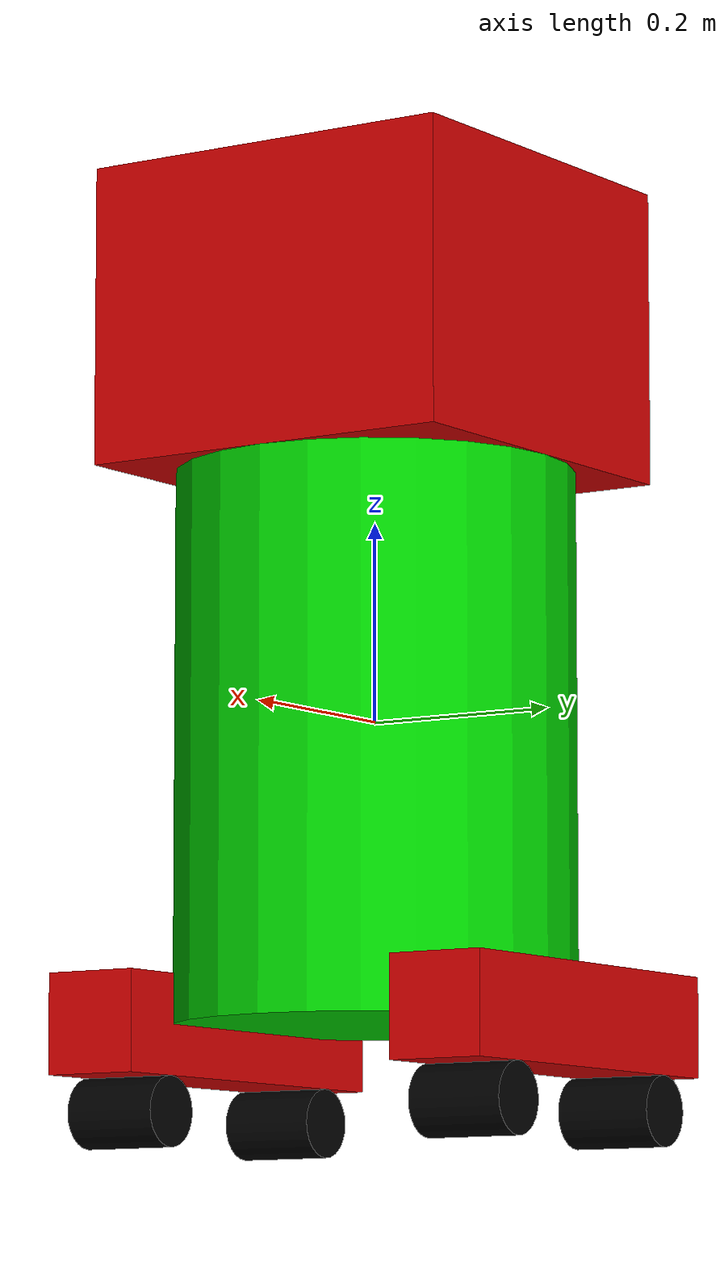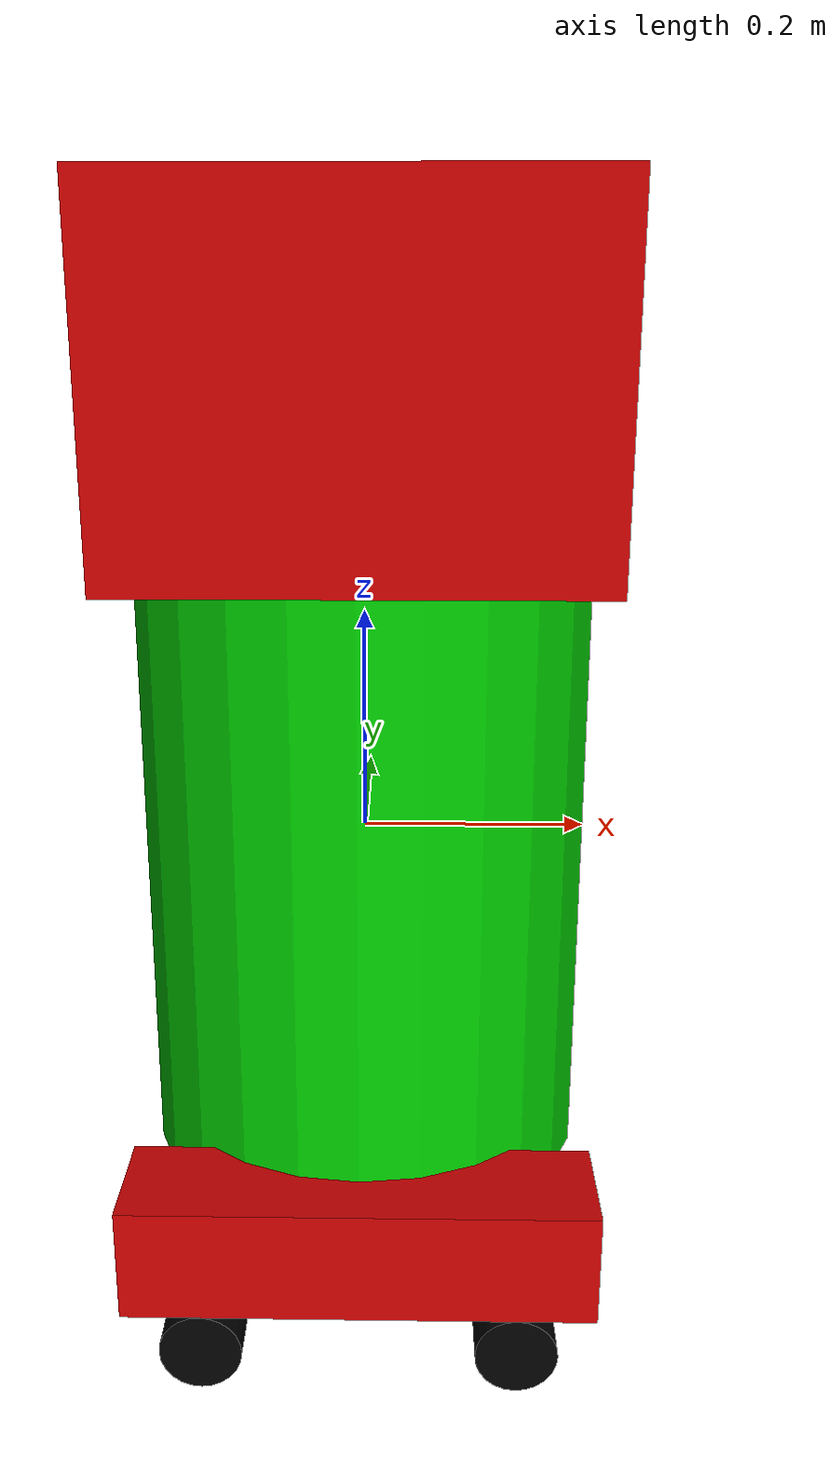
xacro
<?xml version="1.0"?>
<robot name="macroed" xmlns:xacro="http://ros.org/wiki/xacro">

  <xacro:property name="width" value="0.2" />
  <xacro:property name="leglen" value="0.6" />
  <xacro:property name="bodylen" value="0.6" />
  <xacro:property name="baselen" value="0.4" />
  <xacro:property name="wheeldiam" value="0.07" />
  <xacro:property name="pi" value="3.1415" />

  <material name="green">
    <color rgba="0 0.8 0 1"/>
  </material>

  <material name="black">
    <color rgba="0 0 0 1"/>
  </material>

  <material name="red">
    <color rgba="0.8 0 0 1"/>
  </material>

  <xacro:macro name="default_inertial" params="mass">
    <inertial>
      <mass value="${mass}" />
      <inertia ixx="1.0" ixy="0.0" ixz="0.0" iyy="1.0" iyz="0.0" izz="1.0" />
    </inertial>
  </xacro:macro>

  <link name="base_link">
    <visual>
      <geometry>
        <cylinder radius="${width}" length="${bodylen}"/>
      </geometry>
      <material name="green"/>
    </visual>
    <collision>
      <geometry>
        <cylinder radius="${width}" length="${bodylen}"/>
      </geometry>
    </collision>
    <xacro:default_inertial mass="20"/>
  </link>

  <xacro:macro name="wheel" params="prefix suffix reflect">

    <link name="${prefix}_${suffix}_wheel">
      <visual>
        <origin xyz="0 0 0" rpy="${pi/2} 0 0" />
        <geometry>
          <cylinder radius="${wheeldiam/2}" length="0.1"/>
        </geometry>
        <material name="black"/>
      </visual>
      <collision>
        <origin xyz="0 0 0" rpy="${pi/2} 0 0" />
        <geometry>
          <cylinder radius="${wheeldiam/2}" length="0.1"/>
        </geometry>
      </collision>
      <xacro:default_inertial mass="1"/>
    </link>
    <joint name="${prefix}_${suffix}_wheel_joint" type="continuous">
      <axis xyz="0 1 0" rpy="0 0 0" />
      <parent link="${prefix}_base"/>
      <child link="${prefix}_${suffix}_wheel"/>
      <origin xyz="${baselen*reflect/3} 0 -${wheeldiam/2+.05}" rpy="0 0 0"/>
    </joint>

    <gazebo reference="${prefix}_${suffix}_wheel">
      <mu1 value="200.0"/>
      <mu2 value="100.0"/>
      <kp value="10000.0"/>
      <kd value="1.0"/>
      <material>Gazebo/Grey</material>
    </gazebo>

    <transmission name="${prefix}_${suffix}_wheel_trans">
      <type>transmission_interface/SimpleTransmission</type>
      <actuator name="${prefix}_${suffix}_wheel_motor">
        <mechanicalReduction>1</mechanicalReduction>
      </actuator>
      <joint name="${prefix}_${suffix}_wheel_joint">
        <hardwareInterface>hardware_interface/VelocityJointInterface</hardwareInterface>
      </joint>
    </transmission>

  </xacro:macro>

  <xacro:macro name="leg" params="prefix reflect">
    <link name="${prefix}_base">
      <visual>
        <geometry>
          <box size="${baselen} 0.1 0.1"/>
        </geometry>
        <material name="red"/>
      </visual>
      <collision>
        <geometry>
          <box size="${baselen} 0.1 0.1"/>
        </geometry>
      </collision>
      <xacro:default_inertial mass="10"/>
    </link>

    <joint name="${prefix}_base_joint" type="fixed">
      <parent link="base_link"/>
      <child link="${prefix}_base"/>
      <origin xyz="0 ${reflect*(width)} ${-bodylen/2}" />
    </joint>
    <xacro:wheel prefix="${prefix}" suffix="front" reflect="1"/>
    <xacro:wheel prefix="${prefix}" suffix="back" reflect="-1"/>
  </xacro:macro>
  <xacro:leg prefix="right" reflect="-1" />
  <xacro:leg prefix="left" reflect="1" />

  <link name="head">
    <visual>
      <geometry>
        <box size="${width*2} ${width*2} ${width*1.5}"/>
      </geometry>
      <material name="red"/>
    </visual>
    <collision>
      <geometry>
        <box size="${width*2} ${width*2} ${width*2}"/>
      </geometry>
    </collision>
    <xacro:default_inertial mass="2"/>
  </link>

  <joint name="head_swivel" type="continuous">
    <parent link="base_link"/>
    <child link="head"/>
    <axis xyz="0 0 1"/>
    <origin xyz="0 0 ${bodylen-0.2}"/>
    <limit effort="30" velocity="1.0"/>
  </joint>

  <transmission name="head_swivel_trans">
    <type>transmission_interface/SimpleTransmission</type>
    <actuator name="$head_swivel_motor">
      <mechanicalReduction>1</mechanicalReduction>
    </actuator>
    <joint name="head_swivel">
      <hardwareInterface>PositionJointInterface</hardwareInterface>
    </joint>
  </transmission>

  <sensor name="laser scanner" update_rate="20">
    <parent link="head"/>
    <origin xyz="0 0 ${bodylen+width-0.2}" rpy="0 0 0"/>
    <ray>
      <horizontal samples="100" resolution="1" min_angle="-1.5708" max_angle="1.5708"/>
      <vertical samples="1" resolution="1" min_angle="0" max_angle="0"/>
    </ray>
  </sensor>

  <!-- Gazebo plugin for ROS Control -->
  <gazebo>
    <plugin name="gazebo_ros_control" filename="libgazebo_ros_control.so">
      <robotNameSpace>/</robotNameSpace>
    </plugin>
  </gazebo>

</robot>
